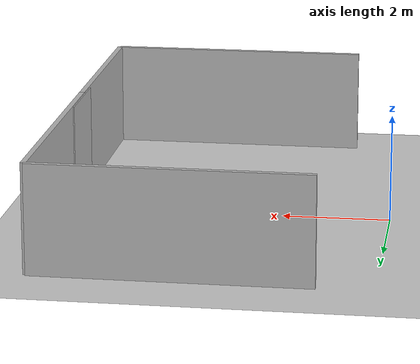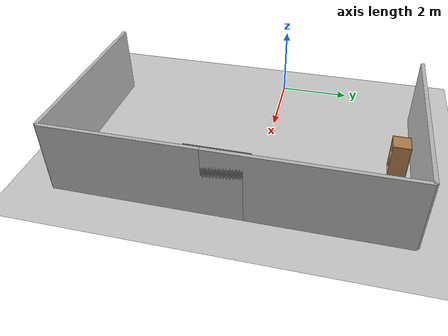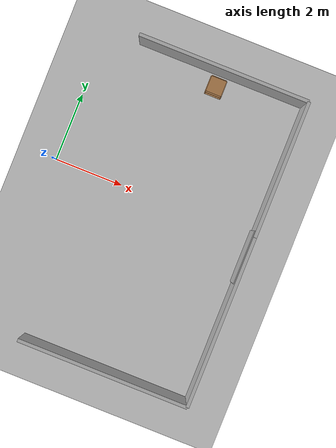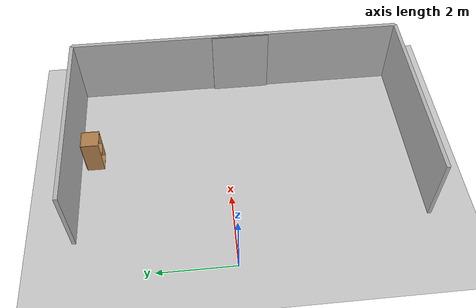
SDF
<sdf version="1.7">
 <world name="default">
  <model name="ground_plane">
   <static>1</static>
   <link name="link">
    <collision name="collision">
     <geometry><plane><normal>0 0 1</normal><size>100 100</size></plane></geometry>
     <surface>
      <contact><collide_bitmask>65535</collide_bitmask></contact>
      <friction><ode><mu>100</mu><mu2>50</mu2></ode></friction>
     </surface>
    </collision>
    <visual name="visual">
     <cast_shadows>0</cast_shadows>
     <geometry><plane><normal>0 0 1</normal><size>1 1</size></plane></geometry>
     <material>
      <script><uri>file://media/materials/scripts/gazebo.material</uri><name>Gazebo/Grey</name></script>
     </material>
    </visual>
   </link>
  </model>
  <model name="cabinet">
   <static>1</static>
   <link name="cabinet_bottom_plate">
    <inertial>
     <pose>0 0 -1 0 -0 0</pose>
     <inertia><ixx>2.05</ixx><ixy>0</ixy><ixz>0</ixz><iyy>2.05</iyy><iyz>0</iyz><izz>2.05</izz></inertia>
     <mass>25</mass>
    </inertial>
    <collision name="cabinet_bottom_plate_geom">
     <pose>0 0 0.01 0 -0 0</pose>
     <geometry><box><size>0.45 0.45 0.02</size></box></geometry>
    </collision>
    <visual name="cabinet_bottom_plate_geom_visual">
     <pose>0 0 0.01 0 -0 0</pose>
     <geometry><box><size>0.45 0.45 0.02</size></box></geometry>
     <material>
      <script><uri>file://media/materials/scripts/gazebo.material</uri><name>Gazebo/Wood</name></script>
     </material>
    </visual>
    <collision name="cabinet_bottom_plate_geom_cabinet_back_plate">
     <pose>0.235 0 0.51 0 -0 0</pose>
     <geometry><box><size>0.02 0.45 1.02</size></box></geometry>
    </collision>
    <visual name="cabinet_bottom_plate_geom_cabinet_back_plate_visual">
     <pose>0.235 0 0.51 0 -0 0</pose>
     <geometry><box><size>0.02 0.45 1.02</size></box></geometry>
     <material>
      <script><uri>file://media/materials/scripts/gazebo.material</uri><name>Gazebo/Wood</name></script>
     </material>
    </visual>
    <collision name="cabinet_bottom_plate_geom_cabinet_left_plate">
     <pose>0 0.235 0.51 0 -0 0</pose>
     <geometry><box><size>0.45 0.02 1.02</size></box></geometry>
    </collision>
    <visual name="cabinet_bottom_plate_geom_cabinet_left_plate_visual">
     <pose>0 0.235 0.51 0 -0 0</pose>
     <geometry><box><size>0.45 0.02 1.02</size></box></geometry>
     <material>
      <script><uri>file://media/materials/scripts/gazebo.material</uri><name>Gazebo/Wood</name></script>
     </material>
    </visual>
    <collision name="cabinet_bottom_plate_geom_cabinet_middle_plate">
     <pose>0 0 0.51 0 -0 0</pose>
     <geometry><box><size>0.45 0.45 0.02</size></box></geometry>
    </collision>
    <visual name="cabinet_bottom_plate_geom_cabinet_middle_plate_visual">
     <pose>0 0 0.51 0 -0 0</pose>
     <geometry><box><size>0.45 0.45 0.02</size></box></geometry>
     <material>
      <script><uri>file://media/materials/scripts/gazebo.material</uri><name>Gazebo/Wood</name></script>
     </material>
    </visual>
    <collision name="cabinet_bottom_plate_geom_cabinet_right_plate">
     <pose>0 -0.235 0.51 0 -0 0</pose>
     <geometry><box><size>0.45 0.02 1.02</size></box></geometry>
    </collision>
    <visual name="cabinet_bottom_plate_geom_cabinet_right_plate_visual">
     <pose>0 -0.235 0.51 0 -0 0</pose>
     <geometry><box><size>0.45 0.02 1.02</size></box></geometry>
     <material>
      <script><uri>file://media/materials/scripts/gazebo.material</uri><name>Gazebo/Wood</name></script>
     </material>
    </visual>
    <collision name="cabinet_bottom_plate_geom_cabinet_top_plate">
     <pose>0 0 1.01 0 -0 0</pose>
     <geometry><box><size>0.45 0.45 0.02</size></box></geometry>
    </collision>
    <visual name="cabinet_bottom_plate_geom_cabinet_top_plate_visual">
     <pose>0 0 1.01 0 -0 0</pose>
     <geometry><box><size>0.45 0.45 0.02</size></box></geometry>
     <material>
      <script><uri>file://media/materials/scripts/gazebo.material</uri><name>Gazebo/Wood</name></script>
     </material>
    </visual>
   </link>
   <pose>3.47976 3.55408 0 0 -0 1.5707</pose>
  </model>
  <model name="room_wall_2x5">
   <link name="link">
    <visual name="visual">
     <geometry><box><size>0.1 5 2</size></box></geometry>
     <material>
      <script>
       <uri>https://fuel.ignitionrobotics.org/1.0/makerspet/models/room_wall_2x5m/1/files/material/script</uri>
       <uri>https://fuel.ignitionrobotics.org/1.0/makerspet/models/room_wall_2x5m/1/files/material/textures</uri>
       <name>Custom/room_wall_2x5</name>
      </script>
     </material>
    </visual>
    <collision name="collision"><geometry><box><size>0.1 5 2</size></box></geometry></collision>
   </link>
   <static>1</static>
   <pose>6 -2.5 1 0 -0 0</pose>
  </model>
  <model name="room_wall_2x5_0">
   <link name="link">
    <visual name="visual">
     <geometry><box><size>0.1 5 2</size></box></geometry>
     <material>
      <script>
       <uri>https://fuel.ignitionrobotics.org/1.0/makerspet/models/room_wall_2x5m/1/files/material/script</uri>
       <uri>https://fuel.ignitionrobotics.org/1.0/makerspet/models/room_wall_2x5m/1/files/material/textures</uri>
       <name>Custom/room_wall_2x5</name>
      </script>
     </material>
    </visual>
    <collision name="collision"><geometry><box><size>0.1 5 2</size></box></geometry></collision>
   </link>
   <static>1</static>
   <pose>6 1.5 1 0 -0 0</pose>
  </model>
  <model name="room_wall_2x5_1">
   <link name="link">
    <visual name="visual">
     <geometry><box><size>0.1 5 2</size></box></geometry>
     <material>
      <script>
       <uri>https://fuel.ignitionrobotics.org/1.0/makerspet/models/room_wall_2x5m/1/files/material/script</uri>
       <uri>https://fuel.ignitionrobotics.org/1.0/makerspet/models/room_wall_2x5m/1/files/material/textures</uri>
       <name>Custom/room_wall_2x5</name>
      </script>
     </material>
    </visual>
    <collision name="collision"><geometry><box><size>0.1 5 2</size></box></geometry></collision>
   </link>
   <static>1</static>
   <pose>3.5 -5 1 0 -0 1.5707</pose>
  </model>
  <model name="window_curtains">
   <link name="link">
    <visual name="visual">
     <geometry><box><size>0.02 1.5676 2</size></box></geometry>
     <material>
      <script>
       <uri>https://fuel.ignitionrobotics.org/1.0/makerspet/models/window_curtains/1/files/material/script</uri>
       <uri>https://fuel.ignitionrobotics.org/1.0/makerspet/models/window_curtains/1/files/material/textures</uri>
       <name>Custom/window_curtains</name>
      </script>
      <emissive>0 1 0 1</emissive>
     </material>
    </visual>
   </link>
   <static>1</static>
   <pose>5.92005 -0.610208 1 0 -0 0</pose>
  </model>
  <model name="room_wall_2x5_2_clone">
   <link name="link">
    <visual name="visual">
     <geometry><box><size>0.1 5 2</size></box></geometry>
     <material>
      <script>
       <uri>https://fuel.ignitionrobotics.org/1.0/makerspet/models/room_wall_2x5m/1/files/material/script</uri>
       <uri>https://fuel.ignitionrobotics.org/1.0/makerspet/models/room_wall_2x5m/1/files/material/textures</uri>
       <name>Custom/room_wall_2x5</name>
      </script>
     </material>
    </visual>
    <collision name="collision"><geometry><box><size>0.1 5 2</size></box></geometry></collision>
   </link>
   <static>1</static>
   <pose>3.5 4 1 0 -0 1.5707</pose>
  </model>
 </world>
</sdf>
